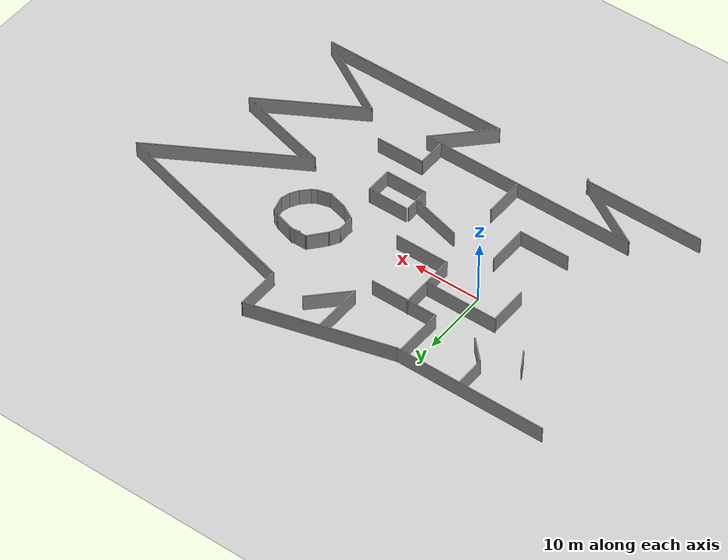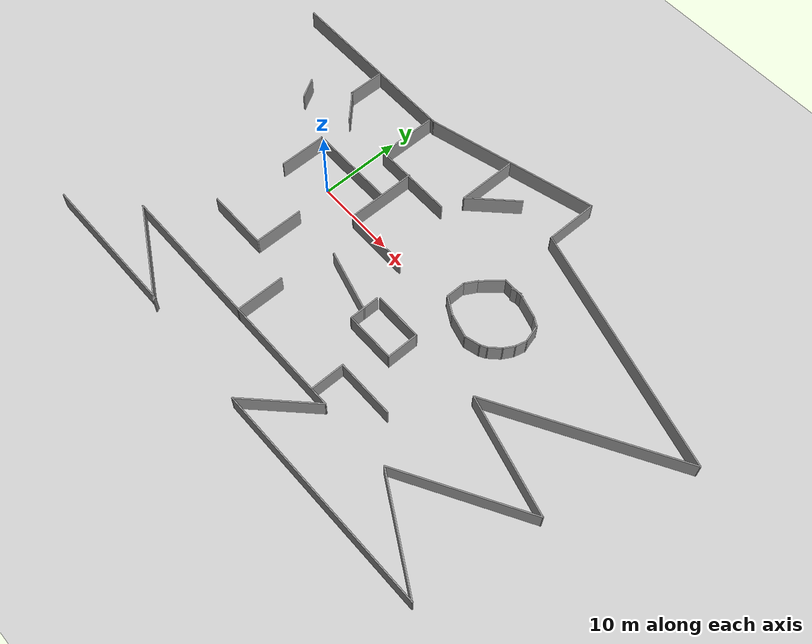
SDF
<sdf version="1.7">
 <world name="default">
  <model name="ground_plane">
   <static>1</static>
   <link name="link">
    <collision name="collision">
     <geometry><plane><normal>0 0 1</normal><size>100 100</size></plane></geometry>
     <surface><friction><ode><mu>100</mu><mu2>50</mu2></ode></friction></surface>
    </collision>
    <visual name="visual">
     <cast_shadows>0</cast_shadows>
     <geometry><plane><normal>0 0 1</normal><size>100 100</size></plane></geometry>
     <material>
      <script><uri>file://media/materials/scripts/gazebo.material</uri><name>Gazebo/Grey</name></script>
     </material>
    </visual>
   </link>
  </model>
  <model name="custommap4">
   <pose>0.895915 -3.48748 0 0 -0 0</pose>
   <link name="Wall_10">
    <collision name="Wall_10_Collision">
     <geometry><box><size>12.5 0.15 2.5</size></box></geometry>
     <pose>0 0 1.25 0 -0 0</pose>
    </collision>
    <visual name="Wall_10_Visual">
     <pose>0 0 1.25 0 -0 0</pose>
     <geometry><box><size>12.5 0.15 2.5</size></box></geometry>
     <material>
      <script><uri>file://media/materials/scripts/gazebo.material</uri><name>Gazebo/Grey</name></script>
      <ambient>1 1 1 1</ambient>
     </material>
     <meta><layer>0</layer></meta>
    </visual>
    <pose>-6.3228 -17.4231 0 0 -0 2.61799</pose>
   </link>
   <link name="Wall_100">
    <collision name="Wall_100_Collision">
     <geometry><box><size>3.27089 0.15 2.5</size></box></geometry>
     <pose>0 0 1.25 0 -0 0</pose>
    </collision>
    <visual name="Wall_100_Visual">
     <pose>0 0 1.25 0 -0 0</pose>
     <geometry><box><size>3.27089 0.15 2.5</size></box></geometry>
     <material>
      <script><uri>file://media/materials/scripts/gazebo.material</uri><name>Gazebo/Grey</name></script>
      <ambient>1 1 1 1</ambient>
     </material>
     <meta><layer>0</layer></meta>
    </visual>
    <pose>25.8005 9.23702 0 0 -0 2.85212</pose>
   </link>
   <link name="Wall_101">
    <collision name="Wall_101_Collision">
     <geometry><box><size>1.25 0.15 2.5</size></box></geometry>
     <pose>0 0 1.25 0 -0 0</pose>
    </collision>
    <visual name="Wall_101_Visual">
     <pose>0 0 1.25 0 -0 0</pose>
     <geometry><box><size>1.25 0.15 2.5</size></box></geometry>
     <material>
      <script><uri>file://media/materials/scripts/gazebo.material</uri><name>Gazebo/Grey</name></script>
      <ambient>1 1 1 1</ambient>
     </material>
     <meta><layer>0</layer></meta>
    </visual>
    <pose>23.7737 9.60162 0 0 -0 -2.87979</pose>
   </link>
   <link name="Wall_103">
    <collision name="Wall_103_Collision">
     <geometry><box><size>6 0.15 2.5</size></box></geometry>
     <pose>0 0 1.25 0 -0 0</pose>
    </collision>
    <visual name="Wall_103_Visual">
     <pose>0 0 1.25 0 -0 0</pose>
     <geometry><box><size>6 0.15 2.5</size></box></geometry>
     <material>
      <script><uri>file://media/materials/scripts/gazebo.material</uri><name>Gazebo/Grey</name></script>
      <ambient>1 1 1 1</ambient>
     </material>
     <meta><layer>0</layer></meta>
    </visual>
    <pose>0.440583 -4.58212 0 0 -0 -1.5708</pose>
   </link>
   <link name="Wall_104">
    <collision name="Wall_104_Collision">
     <geometry><box><size>7.5 0.15 2.5</size></box></geometry>
     <pose>0 0 1.25 0 -0 0</pose>
    </collision>
    <visual name="Wall_104_Visual">
     <pose>0 0 1.25 0 -0 0</pose>
     <geometry><box><size>7.5 0.15 2.5</size></box></geometry>
     <material>
      <script><uri>file://media/materials/scripts/gazebo.material</uri><name>Gazebo/Grey</name></script>
      <ambient>1 1 1 1</ambient>
     </material>
     <meta><layer>0</layer></meta>
    </visual>
    <pose>-3.23442 -7.50712 0 0 -0 3.14159</pose>
   </link>
   <link name="Wall_106">
    <collision name="Wall_106_Collision">
     <geometry><box><size>3.75 0.15 2.5</size></box></geometry>
     <pose>0 0 1.25 0 -0 0</pose>
    </collision>
    <visual name="Wall_106_Visual">
     <pose>0 0 1.25 0 -0 0</pose>
     <geometry><box><size>3.75 0.15 2.5</size></box></geometry>
     <material>
      <script><uri>file://media/materials/scripts/gazebo.material</uri><name>Gazebo/Grey</name></script>
      <ambient>1 1 1 1</ambient>
     </material>
     <meta><layer>0</layer></meta>
    </visual>
    <pose>14.5378 -4.10279 0 0 -0 -1.5708</pose>
   </link>
   <link name="Wall_107">
    <collision name="Wall_107_Collision">
     <geometry><box><size>6.25 0.15 2.5</size></box></geometry>
     <pose>0 0 1.25 0 -0 0</pose>
    </collision>
    <visual name="Wall_107_Visual">
     <pose>0 0 1.25 0 -0 0</pose>
     <geometry><box><size>6.25 0.15 2.5</size></box></geometry>
     <material>
      <script><uri>file://media/materials/scripts/gazebo.material</uri><name>Gazebo/Grey</name></script>
      <ambient>1 1 1 1</ambient>
     </material>
     <meta><layer>0</layer></meta>
    </visual>
    <pose>17.5878 -5.90279 0 0 -0 0</pose>
   </link>
   <link name="Wall_108">
    <collision name="Wall_108_Collision">
     <geometry><box><size>4 0.15 2.5</size></box></geometry>
     <pose>0 0 1.25 0 -0 0</pose>
    </collision>
    <visual name="Wall_108_Visual">
     <pose>0 0 1.25 0 -0 0</pose>
     <geometry><box><size>4 0.15 2.5</size></box></geometry>
     <material>
      <script><uri>file://media/materials/scripts/gazebo.material</uri><name>Gazebo/Grey</name></script>
      <ambient>1 1 1 1</ambient>
     </material>
     <meta><layer>0</layer></meta>
    </visual>
    <pose>20.6378 -3.97779 0 0 -0 1.5708</pose>
   </link>
   <link name="Wall_109">
    <collision name="Wall_109_Collision">
     <geometry><box><size>6 0.15 2.5</size></box></geometry>
     <pose>0 0 1.25 0 -0 0</pose>
    </collision>
    <visual name="Wall_109_Visual">
     <pose>0 0 1.25 0 -0 0</pose>
     <geometry><box><size>6 0.15 2.5</size></box></geometry>
     <material>
      <script><uri>file://media/materials/scripts/gazebo.material</uri><name>Gazebo/Grey</name></script>
      <ambient>1 1 1 1</ambient>
     </material>
     <meta><layer>0</layer></meta>
    </visual>
    <pose>17.7128 -2.05279 0 0 -0 3.14159</pose>
   </link>
   <link name="Wall_11">
    <collision name="Wall_11_Collision">
     <geometry><box><size>32.25 0.15 2.5</size></box></geometry>
     <pose>0 0 1.25 0 -0 0</pose>
    </collision>
    <visual name="Wall_11_Visual">
     <pose>0 0 1.25 0 -0 0</pose>
     <geometry><box><size>32.25 0.15 2.5</size></box></geometry>
     <material>
      <script><uri>file://media/materials/scripts/gazebo.material</uri><name>Gazebo/Grey</name></script>
      <ambient>1 1 1 1</ambient>
     </material>
     <meta><layer>0</layer></meta>
    </visual>
    <pose>4.3795 -14.3356 0 0 -0 0</pose>
   </link>
   <link name="Wall_111">
    <collision name="Wall_111_Collision">
     <geometry><box><size>7.75 0.15 2.5</size></box></geometry>
     <pose>0 0 1.25 0 -0 0</pose>
    </collision>
    <visual name="Wall_111_Visual">
     <pose>0 0 1.25 0 -0 0</pose>
     <geometry><box><size>7.75 0.15 2.5</size></box></geometry>
     <material>
      <script><uri>file://media/materials/scripts/gazebo.material</uri><name>Gazebo/Grey</name></script>
      <ambient>1 1 1 1</ambient>
     </material>
     <meta><layer>0</layer></meta>
    </visual>
    <pose>10.8907 -3.17869 0 0 -0 -0.261799</pose>
   </link>
   <link name="Wall_113">
    <collision name="Wall_113_Collision">
     <geometry><box><size>7.25 0.15 2.5</size></box></geometry>
     <pose>0 0 1.25 0 -0 0</pose>
    </collision>
    <visual name="Wall_113_Visual">
     <pose>0 0 1.25 0 -0 0</pose>
     <geometry><box><size>7.25 0.15 2.5</size></box></geometry>
     <material>
      <script><uri>file://media/materials/scripts/gazebo.material</uri><name>Gazebo/Grey</name></script>
      <ambient>1 1 1 1</ambient>
     </material>
     <meta><layer>0</layer></meta>
    </visual>
    <pose>21.7491 -10.1585 0 0 -0 3.14159</pose>
   </link>
   <link name="Wall_114">
    <collision name="Wall_114_Collision">
     <geometry><box><size>4.25 0.15 2.5</size></box></geometry>
     <pose>0 0 1.25 0 -0 0</pose>
    </collision>
    <visual name="Wall_114_Visual">
     <pose>0 0 1.25 0 -0 0</pose>
     <geometry><box><size>4.25 0.15 2.5</size></box></geometry>
     <material>
      <script><uri>file://media/materials/scripts/gazebo.material</uri><name>Gazebo/Grey</name></script>
      <ambient>1 1 1 1</ambient>
     </material>
     <meta><layer>0</layer></meta>
    </visual>
    <pose>18.1991 -12.2085 0 0 -0 -1.5708</pose>
   </link>
   <link name="Wall_116">
    <collision name="Wall_116_Collision">
     <geometry><box><size>7.25 0.15 2.5</size></box></geometry>
     <pose>0 0 1.25 0 -0 0</pose>
    </collision>
    <visual name="Wall_116_Visual">
     <pose>0 0 1.25 0 -0 0</pose>
     <geometry><box><size>7.25 0.15 2.5</size></box></geometry>
     <material>
      <script><uri>file://media/materials/scripts/gazebo.material</uri><name>Gazebo/Grey</name></script>
      <ambient>1 1 1 1</ambient>
     </material>
     <meta><layer>0</layer></meta>
    </visual>
    <pose>11.2018 17.0687 0 0 -0 -1.5708</pose>
   </link>
   <link name="Wall_117">
    <collision name="Wall_117_Collision">
     <geometry><box><size>6.75 0.15 2.5</size></box></geometry>
     <pose>0 0 1.25 0 -0 0</pose>
    </collision>
    <visual name="Wall_117_Visual">
     <pose>0 0 1.25 0 -0 0</pose>
     <geometry><box><size>6.75 0.15 2.5</size></box></geometry>
     <material>
      <script><uri>file://media/materials/scripts/gazebo.material</uri><name>Gazebo/Grey</name></script>
      <ambient>1 1 1 1</ambient>
     </material>
     <meta><layer>0</layer></meta>
    </visual>
    <pose>13.5353 15.8522 0 0 -0 0.785398</pose>
   </link>
   <link name="Wall_119">
    <collision name="Wall_119_Collision">
     <geometry><box><size>4.5 0.15 2.5</size></box></geometry>
     <pose>0 0 1.25 0 -0 0</pose>
    </collision>
    <visual name="Wall_119_Visual">
     <pose>0 0 1.25 0 -0 0</pose>
     <geometry><box><size>4.5 0.15 2.5</size></box></geometry>
     <material>
      <script><uri>file://media/materials/scripts/gazebo.material</uri><name>Gazebo/Grey</name></script>
      <ambient>1 1 1 1</ambient>
     </material>
     <meta><layer>0</layer></meta>
    </visual>
    <pose>-8.49127 15.861 0 0 -0 -1.5708</pose>
   </link>
   <link name="Wall_12">
    <collision name="Wall_12_Collision">
     <geometry><box><size>9.75 0.15 2.5</size></box></geometry>
     <pose>0 0 1.25 0 -0 0</pose>
    </collision>
    <visual name="Wall_12_Visual">
     <pose>0 0 1.25 0 -0 0</pose>
     <geometry><box><size>9.75 0.15 2.5</size></box></geometry>
     <material>
      <script><uri>file://media/materials/scripts/gazebo.material</uri><name>Gazebo/Grey</name></script>
      <ambient>1 1 1 1</ambient>
     </material>
     <meta><layer>0</layer></meta>
    </visual>
    <pose>17.0354 -17.7297 0 0 -0 -2.35619</pose>
   </link>
   <link name="Wall_120">
    <collision name="Wall_120_Collision">
     <geometry><box><size>4 0.15 2.5</size></box></geometry>
     <pose>0 0 1.25 0 -0 0</pose>
    </collision>
    <visual name="Wall_120_Visual">
     <pose>0 0 1.25 0 -0 0</pose>
     <geometry><box><size>4 0.15 2.5</size></box></geometry>
     <material>
      <script><uri>file://media/materials/scripts/gazebo.material</uri><name>Gazebo/Grey</name></script>
      <ambient>1 1 1 1</ambient>
     </material>
     <meta><layer>0</layer></meta>
    </visual>
    <pose>-7.13009 12.3248 0 0 -0 -0.785398</pose>
   </link>
   <link name="Wall_13">
    <collision name="Wall_13_Collision">
     <geometry><box><size>28 0.15 2.5</size></box></geometry>
     <pose>0 0 1.25 0 -0 0</pose>
    </collision>
    <visual name="Wall_13_Visual">
     <pose>0 0 1.25 0 -0 0</pose>
     <geometry><box><size>28 0.15 2.5</size></box></geometry>
     <material>
      <script><uri>file://media/materials/scripts/gazebo.material</uri><name>Gazebo/Grey</name></script>
      <ambient>1 1 1 1</ambient>
     </material>
     <meta><layer>0</layer></meta>
    </visual>
    <pose>27.5663 -21.1238 0 0 -0 0</pose>
   </link>
   <link name="Wall_14">
    <collision name="Wall_14_Collision">
     <geometry><box><size>14 0.15 2.5</size></box></geometry>
     <pose>0 0 1.25 0 -0 0</pose>
    </collision>
    <visual name="Wall_14_Visual">
     <pose>0 0 1.25 0 -0 0</pose>
     <geometry><box><size>14 0.15 2.5</size></box></geometry>
     <material>
      <script><uri>file://media/materials/scripts/gazebo.material</uri><name>Gazebo/Grey</name></script>
      <ambient>1 1 1 1</ambient>
     </material>
     <meta><layer>0</layer></meta>
    </visual>
    <pose>35.494 -17.6613 0 0 -0 2.61799</pose>
   </link>
   <link name="Wall_15">
    <collision name="Wall_15_Collision">
     <geometry><box><size>16.5 0.15 2.5</size></box></geometry>
     <pose>0 0 1.25 0 -0 0</pose>
    </collision>
    <visual name="Wall_15_Visual">
     <pose>0 0 1.25 0 -0 0</pose>
     <geometry><box><size>16.5 0.15 2.5</size></box></geometry>
     <material>
      <script><uri>file://media/materials/scripts/gazebo.material</uri><name>Gazebo/Grey</name></script>
      <ambient>1 1 1 1</ambient>
     </material>
     <meta><layer>0</layer></meta>
    </visual>
    <pose>36.5766 -10.1113 0 0 -0 0.523599</pose>
   </link>
   <link name="Wall_16">
    <collision name="Wall_16_Collision">
     <geometry><box><size>14.5 0.15 2.5</size></box></geometry>
     <pose>0 0 1.25 0 -0 0</pose>
    </collision>
    <visual name="Wall_16_Visual">
     <pose>0 0 1.25 0 -0 0</pose>
     <geometry><box><size>14.5 0.15 2.5</size></box></geometry>
     <material>
      <script><uri>file://media/materials/scripts/gazebo.material</uri><name>Gazebo/Grey</name></script>
      <ambient>1 1 1 1</ambient>
     </material>
     <meta><layer>0</layer></meta>
    </visual>
    <pose>36.7258 -4.16677 0 0 -0 2.87979</pose>
   </link>
   <link name="Wall_17">
    <collision name="Wall_17_Collision">
     <geometry><box><size>23.75 0.15 2.5</size></box></geometry>
     <pose>0 0 1.25 0 -0 0</pose>
    </collision>
    <visual name="Wall_17_Visual">
     <pose>0 0 1.25 0 -0 0</pose>
     <geometry><box><size>23.75 0.15 2.5</size></box></geometry>
     <material>
      <script><uri>file://media/materials/scripts/gazebo.material</uri><name>Gazebo/Grey</name></script>
      <ambient>1 1 1 1</ambient>
     </material>
     <meta><layer>0</layer></meta>
    </visual>
    <pose>40.0144 3.59025 0 0 -0 0.523599</pose>
   </link>
   <link name="Wall_18">
    <collision name="Wall_18_Collision">
     <geometry><box><size>30 0.15 2.5</size></box></geometry>
     <pose>0 0 1.25 0 -0 0</pose>
    </collision>
    <visual name="Wall_18_Visual">
     <pose>0 0 1.25 0 -0 0</pose>
     <geometry><box><size>30 0.15 2.5</size></box></geometry>
     <material>
      <script><uri>file://media/materials/scripts/gazebo.material</uri><name>Gazebo/Grey</name></script>
      <ambient>1 1 1 1</ambient>
     </material>
     <meta><layer>0</layer></meta>
    </visual>
    <pose>35.8171 13.3531 0 0 -0 2.87979</pose>
   </link>
   <link name="Wall_19">
    <collision name="Wall_19_Collision">
     <geometry><box><size>6.5 0.15 2.5</size></box></geometry>
     <pose>0 0 1.25 0 -0 0</pose>
    </collision>
    <visual name="Wall_19_Visual">
     <pose>0 0 1.25 0 -0 0</pose>
     <geometry><box><size>6.5 0.15 2.5</size></box></geometry>
     <material>
      <script><uri>file://media/materials/scripts/gazebo.material</uri><name>Gazebo/Grey</name></script>
      <ambient>1 1 1 1</ambient>
     </material>
     <meta><layer>0</layer></meta>
    </visual>
    <pose>21.4006 20.391 0 0 -0 1.5708</pose>
   </link>
   <link name="Wall_20">
    <collision name="Wall_20_Collision">
     <geometry><box><size>21.25 0.15 2.5</size></box></geometry>
     <pose>0 0 1.25 0 -0 0</pose>
    </collision>
    <visual name="Wall_20_Visual">
     <pose>0 0 1.25 0 -0 0</pose>
     <geometry><box><size>21.25 0.15 2.5</size></box></geometry>
     <material>
      <script><uri>file://media/materials/scripts/gazebo.material</uri><name>Gazebo/Grey</name></script>
      <ambient>1 1 1 1</ambient>
     </material>
     <meta><layer>0</layer></meta>
    </visual>
    <pose>11.2101 20.8355 0 0 -0 -2.87979</pose>
   </link>
   <link name="Wall_21">
    <collision name="Wall_21_Collision">
     <geometry><box><size>22.25 0.15 2.5</size></box></geometry>
     <pose>0 0 1.25 0 -0 0</pose>
    </collision>
    <visual name="Wall_21_Visual">
     <pose>0 0 1.25 0 -0 0</pose>
     <geometry><box><size>22.25 0.15 2.5</size></box></geometry>
     <material>
      <script><uri>file://media/materials/scripts/gazebo.material</uri><name>Gazebo/Grey</name></script>
      <ambient>1 1 1 1</ambient>
     </material>
     <meta><layer>0</layer></meta>
    </visual>
    <pose>-10.0304 18.1049 0 0 -0 3.14159</pose>
   </link>
   <link name="Wall_50">
    <collision name="Wall_50_Collision">
     <geometry><box><size>2.75 0.15 2.5</size></box></geometry>
     <pose>0 0 1.25 0 -0 0</pose>
    </collision>
    <visual name="Wall_50_Visual">
     <pose>0 0 1.25 0 -0 0</pose>
     <geometry><box><size>2.75 0.15 2.5</size></box></geometry>
     <material>
      <script><uri>file://media/materials/scripts/gazebo.material</uri><name>Gazebo/Grey</name></script>
      <ambient>1 1 1 1</ambient>
     </material>
     <meta><layer>0</layer></meta>
    </visual>
    <pose>-12.4778 10.1611 0 0 -0 2.0944</pose>
   </link>
   <link name="Wall_55">
    <collision name="Wall_55_Collision">
     <geometry><box><size>7.25 0.15 2.5</size></box></geometry>
     <pose>0 0 1.25 0 -0 0</pose>
    </collision>
    <visual name="Wall_55_Visual">
     <pose>0 0 1.25 0 -0 0</pose>
     <geometry><box><size>7.25 0.15 2.5</size></box></geometry>
     <material>
      <script><uri>file://media/materials/scripts/gazebo.material</uri><name>Gazebo/Grey</name></script>
      <ambient>1 1 1 1</ambient>
     </material>
     <meta><layer>0</layer></meta>
    </visual>
    <pose>0.545381 14.3342 0 0 -0 -1.5708</pose>
   </link>
   <link name="Wall_56">
    <collision name="Wall_56_Collision">
     <geometry><box><size>10 0.15 2.5</size></box></geometry>
     <pose>0 0 1.25 0 -0 0</pose>
    </collision>
    <visual name="Wall_56_Visual">
     <pose>0 0 1.25 0 -0 0</pose>
     <geometry><box><size>10 0.15 2.5</size></box></geometry>
     <material>
      <script><uri>file://media/materials/scripts/gazebo.material</uri><name>Gazebo/Grey</name></script>
      <ambient>1 1 1 1</ambient>
     </material>
     <meta><layer>0</layer></meta>
    </visual>
    <pose>5.47038 10.7842 0 0 -0 0</pose>
   </link>
   <link name="Wall_58">
    <collision name="Wall_58_Collision">
     <geometry><box><size>8.5 0.15 2.5</size></box></geometry>
     <pose>0 0 1.25 0 -0 0</pose>
    </collision>
    <visual name="Wall_58_Visual">
     <pose>0 0 1.25 0 -0 0</pose>
     <geometry><box><size>8.5 0.15 2.5</size></box></geometry>
     <material>
      <script><uri>file://media/materials/scripts/gazebo.material</uri><name>Gazebo/Grey</name></script>
      <ambient>1 1 1 1</ambient>
     </material>
     <meta><layer>0</layer></meta>
    </visual>
    <pose>4.85802 6.71133 0 0 -0 -1.5708</pose>
   </link>
   <link name="Wall_59">
    <collision name="Wall_59_Collision">
     <geometry><box><size>8 0.15 2.5</size></box></geometry>
     <pose>0 0 1.25 0 -0 0</pose>
    </collision>
    <visual name="Wall_59_Visual">
     <pose>0 0 1.25 0 -0 0</pose>
     <geometry><box><size>8 0.15 2.5</size></box></geometry>
     <material>
      <script><uri>file://media/materials/scripts/gazebo.material</uri><name>Gazebo/Grey</name></script>
      <ambient>1 1 1 1</ambient>
     </material>
     <meta><layer>0</layer></meta>
    </visual>
    <pose>8.78302 2.53633 0 0 -0 0</pose>
   </link>
   <link name="Wall_61">
    <collision name="Wall_61_Collision">
     <geometry><box><size>10.8715 0.15 2.5</size></box></geometry>
     <pose>0 0 1.25 0 -0 0</pose>
    </collision>
    <visual name="Wall_61_Visual">
     <pose>0 0 1.25 0 -0 0</pose>
     <geometry><box><size>10.8715 0.15 2.5</size></box></geometry>
     <material>
      <script><uri>file://media/materials/scripts/gazebo.material</uri><name>Gazebo/Grey</name></script>
      <ambient>1 1 1 1</ambient>
     </material>
     <meta><layer>0</layer></meta>
    </visual>
    <pose>-0.502738 6.8178 0 0 -0 3.14159</pose>
   </link>
   <link name="Wall_62">
    <collision name="Wall_62_Collision">
     <geometry><box><size>5.75 0.15 2.5</size></box></geometry>
     <pose>0 0 1.25 0 -0 0</pose>
    </collision>
    <visual name="Wall_62_Visual">
     <pose>0 0 1.25 0 -0 0</pose>
     <geometry><box><size>5.75 0.15 2.5</size></box></geometry>
     <material>
      <script><uri>file://media/materials/scripts/gazebo.material</uri><name>Gazebo/Grey</name></script>
      <ambient>1 1 1 1</ambient>
     </material>
     <meta><layer>0</layer></meta>
    </visual>
    <pose>-5.78213 3.93643 0 0 -0 -1.5708</pose>
   </link>
   <link name="Wall_67">
    <collision name="Wall_67_Collision">
     <geometry><box><size>6 0.15 2.5</size></box></geometry>
     <pose>0 0 1.25 0 -0 0</pose>
    </collision>
    <visual name="Wall_67_Visual">
     <pose>0 0 1.25 0 -0 0</pose>
     <geometry><box><size>6 0.15 2.5</size></box></geometry>
     <material>
      <script><uri>file://media/materials/scripts/gazebo.material</uri><name>Gazebo/Grey</name></script>
      <ambient>1 1 1 1</ambient>
     </material>
     <meta><layer>0</layer></meta>
    </visual>
    <pose>5.83447 -11.4136 0 0 -0 1.5708</pose>
   </link>
   <link name="Wall_8">
    <collision name="Wall_8_Collision">
     <geometry><box><size>17.75 0.15 2.5</size></box></geometry>
     <pose>0 0 1.25 0 -0 0</pose>
    </collision>
    <visual name="Wall_8_Visual">
     <pose>0 0 1.25 0 -0 0</pose>
     <geometry><box><size>17.75 0.15 2.5</size></box></geometry>
     <material>
      <script><uri>file://media/materials/scripts/gazebo.material</uri><name>Gazebo/Grey</name></script>
      <ambient>1 1 1 1</ambient>
     </material>
     <meta><layer>0</layer></meta>
    </visual>
    <pose>-9.95009 -20.2075 0 0 -0 0</pose>
   </link>
   <link name="Wall_87">
    <collision name="Wall_87_Collision">
     <geometry><box><size>2.75 0.15 2.5</size></box></geometry>
     <pose>0 0 1.25 0 -0 0</pose>
    </collision>
    <visual name="Wall_87_Visual">
     <pose>0 0 1.25 0 -0 0</pose>
     <geometry><box><size>2.75 0.15 2.5</size></box></geometry>
     <material>
      <script><uri>file://media/materials/scripts/gazebo.material</uri><name>Gazebo/Grey</name></script>
      <ambient>1 1 1 1</ambient>
     </material>
     <meta><layer>0</layer></meta>
    </visual>
    <pose>23.3331 9.63008 0 0 -0 3.14159</pose>
   </link>
   <link name="Wall_88">
    <collision name="Wall_88_Collision">
     <geometry><box><size>3.16047 0.15 2.5</size></box></geometry>
     <pose>0 0 1.25 0 -0 0</pose>
    </collision>
    <visual name="Wall_88_Visual">
     <pose>0 0 1.25 0 -0 0</pose>
     <geometry><box><size>3.16047 0.15 2.5</size></box></geometry>
     <material>
      <script><uri>file://media/materials/scripts/gazebo.material</uri><name>Gazebo/Grey</name></script>
      <ambient>1 1 1 1</ambient>
     </material>
     <meta><layer>0</layer></meta>
    </visual>
    <pose>21.1099 8.4916 0 0 -0 -2.28387</pose>
   </link>
   <link name="Wall_89">
    <collision name="Wall_89_Collision">
     <geometry><box><size>1.75 0.15 2.5</size></box></geometry>
     <pose>0 0 1.25 0 -0 0</pose>
    </collision>
    <visual name="Wall_89_Visual">
     <pose>0 0 1.25 0 -0 0</pose>
     <geometry><box><size>1.75 0.15 2.5</size></box></geometry>
     <material>
      <script><uri>file://media/materials/scripts/gazebo.material</uri><name>Gazebo/Grey</name></script>
      <ambient>1 1 1 1</ambient>
     </material>
     <meta><layer>0</layer></meta>
    </visual>
    <pose>19.7253 6.66029 0 0 -0 -2.0944</pose>
   </link>
   <link name="Wall_9">
    <collision name="Wall_9_Collision">
     <geometry><box><size>0.5 0.15 2.5</size></box></geometry>
     <pose>0 0 1.25 0 -0 0</pose>
    </collision>
    <visual name="Wall_9_Visual">
     <pose>0 0 1.25 0 -0 0</pose>
     <geometry><box><size>0.5 0.15 2.5</size></box></geometry>
     <material>
      <script><uri>file://media/materials/scripts/gazebo.material</uri><name>Gazebo/Grey</name></script>
      <ambient>1 1 1 1</ambient>
     </material>
     <meta><layer>0</layer></meta>
    </visual>
    <pose>-1.06259 -20.359 0 0 -0 -1.0472</pose>
   </link>
   <link name="Wall_90">
    <collision name="Wall_90_Collision">
     <geometry><box><size>2.5 0.15 2.5</size></box></geometry>
     <pose>0 0 1.25 0 -0 0</pose>
    </collision>
    <visual name="Wall_90_Visual">
     <pose>0 0 1.25 0 -0 0</pose>
     <geometry><box><size>2.5 0.15 2.5</size></box></geometry>
     <material>
      <script><uri>file://media/materials/scripts/gazebo.material</uri><name>Gazebo/Grey</name></script>
      <ambient>1 1 1 1</ambient>
     </material>
     <meta><layer>0</layer></meta>
    </visual>
    <pose>19.3253 4.79246 0 0 -0 -1.5708</pose>
   </link>
   <link name="Wall_91">
    <collision name="Wall_91_Collision">
     <geometry><box><size>2.5 0.15 2.5</size></box></geometry>
     <pose>0 0 1.25 0 -0 0</pose>
    </collision>
    <visual name="Wall_91_Visual">
     <pose>0 0 1.25 0 -0 0</pose>
     <geometry><box><size>2.5 0.15 2.5</size></box></geometry>
     <material>
      <script><uri>file://media/materials/scripts/gazebo.material</uri><name>Gazebo/Grey</name></script>
      <ambient>1 1 1 1</ambient>
     </material>
     <meta><layer>0</layer></meta>
    </visual>
    <pose>20.3428 3.02996 0 0 -0 -0.523599</pose>
   </link>
   <link name="Wall_92">
    <collision name="Wall_92_Collision">
     <geometry><box><size>3 0.15 2.5</size></box></geometry>
     <pose>0 0 1.25 0 -0 0</pose>
    </collision>
    <visual name="Wall_92_Visual">
     <pose>0 0 1.25 0 -0 0</pose>
     <geometry><box><size>3 0.15 2.5</size></box></geometry>
     <material>
      <script><uri>file://media/materials/scripts/gazebo.material</uri><name>Gazebo/Grey</name></script>
      <ambient>1 1 1 1</ambient>
     </material>
     <meta><layer>0</layer></meta>
    </visual>
    <pose>22.7369 2.07365 0 0 -0 -0.261799</pose>
   </link>
   <link name="Wall_93">
    <collision name="Wall_93_Collision">
     <geometry><box><size>2 0.15 2.5</size></box></geometry>
     <pose>0 0 1.25 0 -0 0</pose>
    </collision>
    <visual name="Wall_93_Visual">
     <pose>0 0 1.25 0 -0 0</pose>
     <geometry><box><size>2 0.15 2.5</size></box></geometry>
     <material>
      <script><uri>file://media/materials/scripts/gazebo.material</uri><name>Gazebo/Grey</name></script>
      <ambient>1 1 1 1</ambient>
     </material>
     <meta><layer>0</layer></meta>
    </visual>
    <pose>25.0068 1.94424 0 0 -0 0.261799</pose>
   </link>
   <link name="Wall_94">
    <collision name="Wall_94_Collision">
     <geometry><box><size>1 0.15 2.5</size></box></geometry>
     <pose>0 0 1.25 0 -0 0</pose>
    </collision>
    <visual name="Wall_94_Visual">
     <pose>0 0 1.25 0 -0 0</pose>
     <geometry><box><size>1 0.15 2.5</size></box></geometry>
     <material>
      <script><uri>file://media/materials/scripts/gazebo.material</uri><name>Gazebo/Grey</name></script>
      <ambient>1 1 1 1</ambient>
     </material>
     <meta><layer>0</layer></meta>
    </visual>
    <pose>26.2683 2.39615 0 0 -0 0.523599</pose>
   </link>
   <link name="Wall_95">
    <collision name="Wall_95_Collision">
     <geometry><box><size>1.75 0.15 2.5</size></box></geometry>
     <pose>0 0 1.25 0 -0 0</pose>
    </collision>
    <visual name="Wall_95_Visual">
     <pose>0 0 1.25 0 -0 0</pose>
     <geometry><box><size>1.75 0.15 2.5</size></box></geometry>
     <material>
      <script><uri>file://media/materials/scripts/gazebo.material</uri><name>Gazebo/Grey</name></script>
      <ambient>1 1 1 1</ambient>
     </material>
     <meta><layer>0</layer></meta>
    </visual>
    <pose>27.2021 3.17433 0 0 -0 0.785398</pose>
   </link>
   <link name="Wall_96">
    <collision name="Wall_96_Collision">
     <geometry><box><size>1.5 0.15 2.5</size></box></geometry>
     <pose>0 0 1.25 0 -0 0</pose>
    </collision>
    <visual name="Wall_96_Visual">
     <pose>0 0 1.25 0 -0 0</pose>
     <geometry><box><size>1.5 0.15 2.5</size></box></geometry>
     <material>
      <script><uri>file://media/materials/scripts/gazebo.material</uri><name>Gazebo/Grey</name></script>
      <ambient>1 1 1 1</ambient>
     </material>
     <meta><layer>0</layer></meta>
    </visual>
    <pose>28.1053 4.32458 0 0 -0 1.0472</pose>
   </link>
   <link name="Wall_97">
    <collision name="Wall_97_Collision">
     <geometry><box><size>1.5 0.15 2.5</size></box></geometry>
     <pose>0 0 1.25 0 -0 0</pose>
    </collision>
    <visual name="Wall_97_Visual">
     <pose>0 0 1.25 0 -0 0</pose>
     <geometry><box><size>1.5 0.15 2.5</size></box></geometry>
     <material>
      <script><uri>file://media/materials/scripts/gazebo.material</uri><name>Gazebo/Grey</name></script>
      <ambient>1 1 1 1</ambient>
     </material>
     <meta><layer>0</layer></meta>
    </visual>
    <pose>28.6175 5.56115 0 0 -0 1.309</pose>
   </link>
   <link name="Wall_98">
    <collision name="Wall_98_Collision">
     <geometry><box><size>2.25 0.15 2.5</size></box></geometry>
     <pose>0 0 1.25 0 -0 0</pose>
    </collision>
    <visual name="Wall_98_Visual">
     <pose>0 0 1.25 0 -0 0</pose>
     <geometry><box><size>2.25 0.15 2.5</size></box></geometry>
     <material>
      <script><uri>file://media/materials/scripts/gazebo.material</uri><name>Gazebo/Grey</name></script>
      <ambient>1 1 1 1</ambient>
     </material>
     <meta><layer>0</layer></meta>
    </visual>
    <pose>28.5204 7.22737 0 0 -0 1.8326</pose>
   </link>
   <link name="Wall_99">
    <collision name="Wall_99_Collision">
     <geometry><box><size>1.25 0.15 2.5</size></box></geometry>
     <pose>0 0 1.25 0 -0 0</pose>
    </collision>
    <visual name="Wall_99_Visual">
     <pose>0 0 1.25 0 -0 0</pose>
     <geometry><box><size>1.25 0.15 2.5</size></box></geometry>
     <material>
      <script><uri>file://media/materials/scripts/gazebo.material</uri><name>Gazebo/Grey</name></script>
      <ambient>1 1 1 1</ambient>
     </material>
     <meta><layer>0</layer></meta>
    </visual>
    <pose>27.7723 8.51659 0 0 -0 2.61799</pose>
   </link>
   <static>1</static>
  </model>
 </world>
</sdf>
